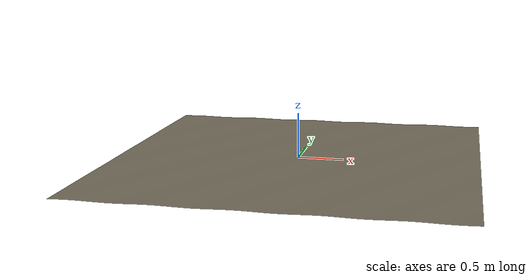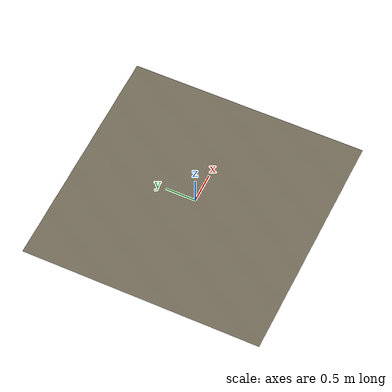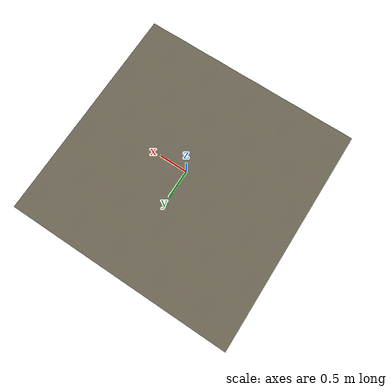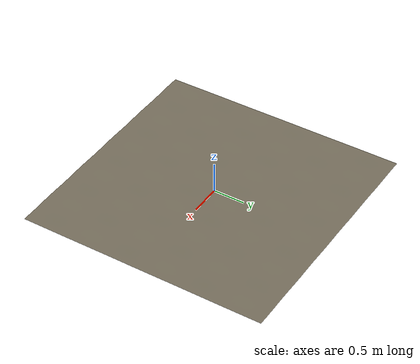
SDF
<sdf version="1.7">
  <world name="gait_low_relief">
    <physics type="ode">
      <max_step_size>0.01</max_step_size>
    </physics>
    <light name="sun" type="directional">
      <cast_shadows>true</cast_shadows>
      <pose>0 0 20 0 0 0</pose>
      <diffuse>0.8 0.8 0.8 1</diffuse>
      <direction>-0.5 0.3 -1.0</direction>
    </light>
    <model name="terrain">
      <static>true</static>

      <pose>0 0 0 0 0 0</pose>
      <link name="link">
        <collision name="collision">
          <geometry><heightmap><uri>terrain.png</uri><size>4 4 0.008</size></heightmap></geometry>
          <surface>
            <friction><ode><mu>0.9</mu><mu2>0.9</mu2></ode></friction>
          </surface>
        </collision>
        <visual name="visual">
          <geometry><mesh><uri>terrain_visual.obj</uri></mesh></geometry>
          <material>
            <ambient>0.45 0.42 0.35 1</ambient>
            <diffuse>0.45 0.42 0.35 1</diffuse>
          </material>
        </visual>
      </link>
    </model>
    </world>
</sdf>
